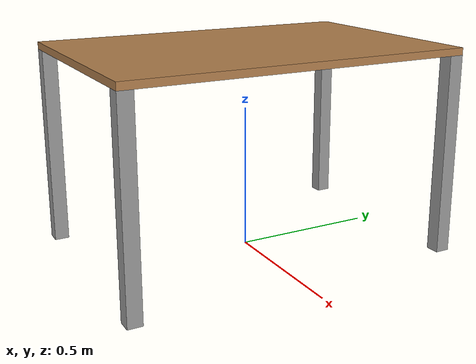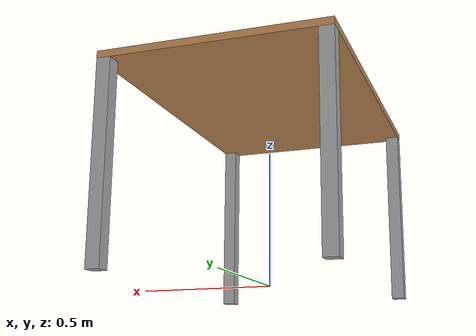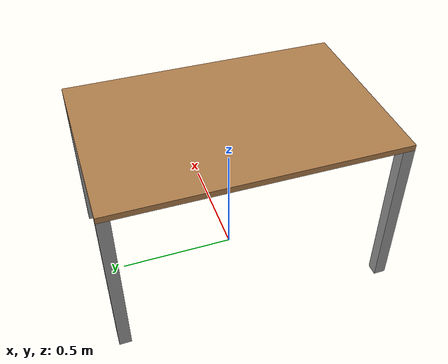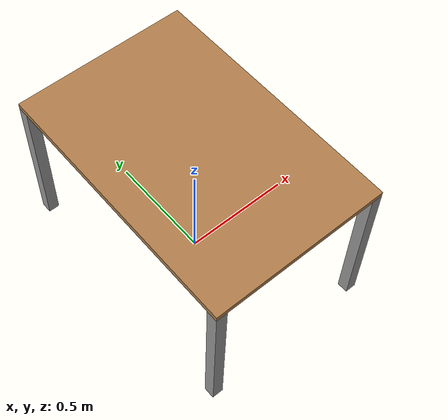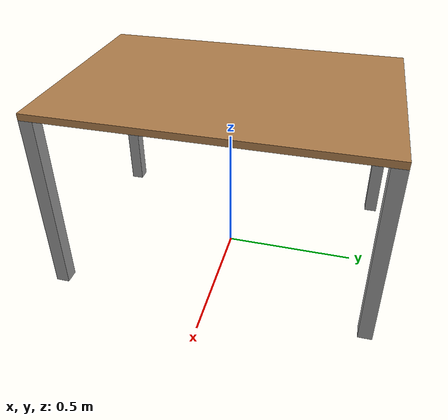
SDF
<?xml version="1.0" ?>
<sdf version="1.5">
  <model name="medium_table">
    <static>true</static>
    <link name="link">
      <collision name="surface">
        <pose>0 0 0.7075 0 0 0</pose>
        <geometry>
          <box>
            <size>0.8 1.2 0.025</size>
          </box>
        </geometry>
        <surface>
          <friction>
            <ode>
              <mu>0.6</mu>
              <mu2>0.6</mu2>
            </ode>
          </friction>
        </surface>
      </collision>
      <visual name="visual1">
        <pose>0 0 0.7075 0 0 0</pose>
        <geometry>
          <box>
            <size>0.8 1.2 0.025</size>
          </box>
        </geometry>
        <material>
          <script>
            <uri>file://media/materials/scripts/gazebo.material</uri>
            <name>Gazebo/Wood</name>
          </script>
        </material>
      </visual>
      <collision name="front_left_leg">
        <pose>0.375 0.575 0.3475 0 0 0</pose>
        <geometry>
          <box>
            <size>0.05 0.05 0.695</size>
          </box>
        </geometry>
      </collision>
      <visual name="front_left_leg">
        <pose>0.375 0.575 0.3475 0 0 0</pose>
        <geometry>
          <box>
            <size>0.05 0.05 0.695</size>
          </box>
        </geometry>
        <material>
          <script>
            <uri>file://media/materials/scripts/gazebo.material</uri>
            <name>Gazebo/Grey</name>
          </script>
        </material>
      </visual>
      <collision name="front_right_leg">
        <pose>0.375 -0.575 0.3475 0 0 0</pose>
        <geometry>
          <box>
            <size>0.05 0.05 0.695</size>
          </box>
        </geometry>
      </collision>
      <visual name="front_right_leg">
        <pose>0.375 -0.575 0.3475 0 0 0</pose>
        <geometry>
          <box>
            <size>0.05 0.05 0.695</size>
          </box>
        </geometry>
        <material>
          <script>
            <uri>file://media/materials/scripts/gazebo.material</uri>
            <name>Gazebo/Grey</name>
          </script>
        </material>
      </visual>
      <collision name="back_right_leg">
        <pose>-0.375 -0.575 0.3475 0 0 0</pose>
        <geometry>
          <box>
            <size>0.05 0.05 0.695</size>
          </box>
        </geometry>
      </collision>
      <visual name="back_right_leg">
        <pose>-0.375 -0.575 0.3475 0 0 0</pose>
        <geometry>
          <box>
            <size>0.05 0.05 0.695</size>
          </box>
        </geometry>
        <material>
          <script>
            <uri>file://media/materials/scripts/gazebo.material</uri>
            <name>Gazebo/Grey</name>
          </script>
        </material>
      </visual>
      <collision name="back_left_leg">
        <pose>-0.375 0.575 0.3475 0 0 0</pose>
        <geometry>
          <box>
            <size>0.05 0.05 0.695</size>
          </box>
        </geometry>
      </collision>
      <visual name="back_left_leg">
        <pose>-0.375 0.575 0.3475 0 0 0</pose>
        <geometry>
          <box>
            <size>0.05 0.05 0.695</size>
          </box>
        </geometry>
        <material>
          <script>
            <uri>file://media/materials/scripts/gazebo.material</uri>
            <name>Gazebo/Grey</name>
          </script>
        </material>
      </visual>
    </link>
  </model>
</sdf>
